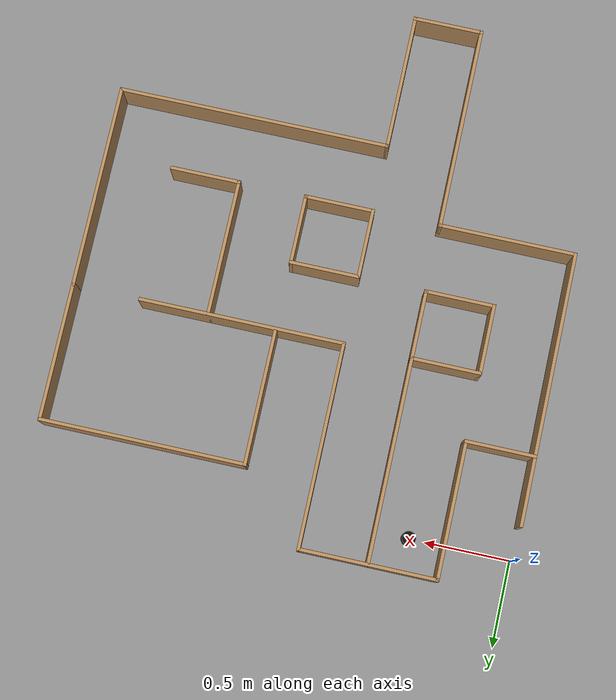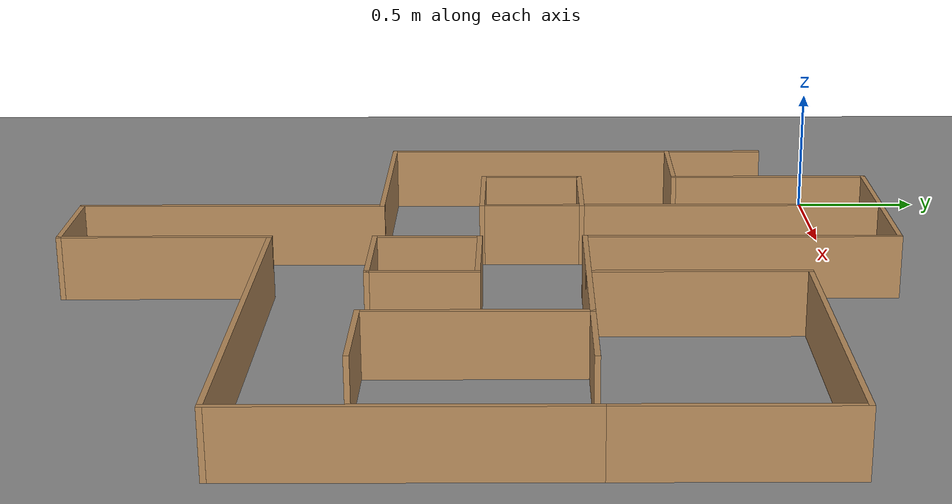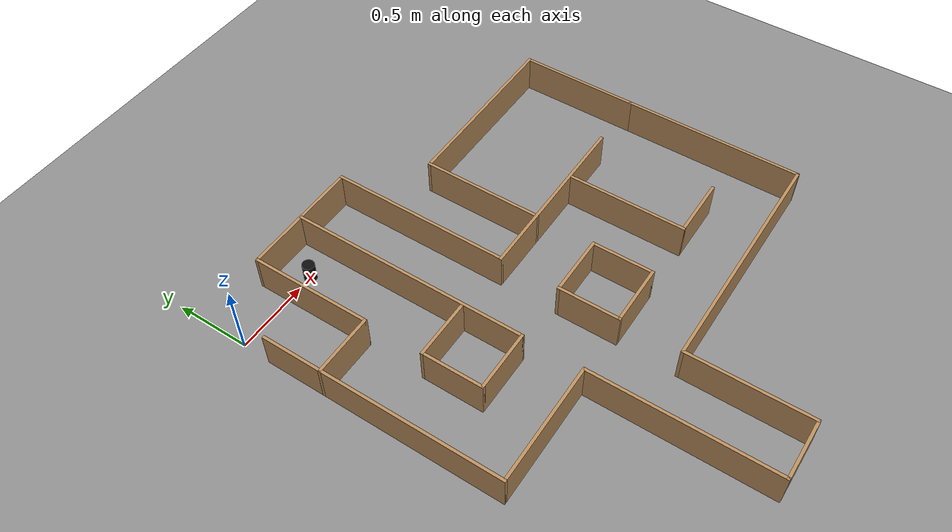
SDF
<sdf version="1.9">
 <world name="ros2_world">
  <model name="ground_plane">
   <static>true</static>
   <link name="link">
    <collision name="collision">
     <geometry><plane><normal>0 0 1</normal><size>10 10</size></plane></geometry>
    </collision>
    <visual name="visual">
     <geometry><plane><normal>0 0 1</normal><size>10 10</size></plane></geometry>
     <material><ambient>0.55 0.55 0.55 1</ambient><diffuse>0.55 0.55 0.55 1</diffuse></material>
    </visual>
   </link>
  </model>
  <model name="paredes">
   <static>true</static>
   <link name="link">
    <collision name="c1">
     <pose>0.8 0.2 0.125 0 0 0</pose>
     <geometry><box><size>0.82 0.02 0.25</size></box></geometry>
    </collision>
    <visual name="v1">
     <pose>0.8 0.2 0.125 0 0 0</pose>
     <geometry><box><size>0.82 0.02 0.25</size></box></geometry>
     <material><ambient>0.72 0.55 0.36 1</ambient><diffuse>0.72 0.55 0.36 1</diffuse></material>
    </visual>
    <collision name="c2">
     <pose>0.4 -0.2 0.125 0 0 -1.5708</pose>
     <geometry><box><size>0.82 0.02 0.25</size></box></geometry>
    </collision>
    <visual name="v2">
     <pose>0.4 -0.2 0.125 0 0 -1.5708</pose>
     <geometry><box><size>0.82 0.02 0.25</size></box></geometry>
     <material><ambient>0.72 0.55 0.36 1</ambient><diffuse>0.72 0.55 0.36 1</diffuse></material>
    </visual>
    <collision name="c3">
     <pose>0.2 -0.6 0.125 0 0 0</pose>
     <geometry><box><size>0.42 0.02 0.25</size></box></geometry>
    </collision>
    <visual name="v3">
     <pose>0.2 -0.6 0.125 0 0 0</pose>
     <geometry><box><size>0.42 0.02 0.25</size></box></geometry>
     <material><ambient>0.72 0.55 0.36 1</ambient><diffuse>0.72 0.55 0.36 1</diffuse></material>
    </visual>
    <collision name="c4">
     <pose>0 -1 0.125 0 0 -1.5708</pose>
     <geometry><box><size>1.62 0.02 0.25</size></box></geometry>
    </collision>
    <visual name="v4">
     <pose>0 -1 0.125 0 0 -1.5708</pose>
     <geometry><box><size>1.62 0.02 0.25</size></box></geometry>
     <material><ambient>0.72 0.55 0.36 1</ambient><diffuse>0.72 0.55 0.36 1</diffuse></material>
    </visual>
    <collision name="c5">
     <pose>0.8 -0.6 0.125 0 0 -1.5708</pose>
     <geometry><box><size>1.62 0.02 0.25</size></box></geometry>
    </collision>
    <visual name="v5">
     <pose>0.8 -0.6 0.125 0 0 -1.5708</pose>
     <geometry><box><size>1.62 0.02 0.25</size></box></geometry>
     <material><ambient>0.72 0.55 0.36 1</ambient><diffuse>0.72 0.55 0.36 1</diffuse></material>
    </visual>
    <collision name="c6">
     <pose>0.6 -1 0.125 0 0 0</pose>
     <geometry><box><size>0.42 0.02 0.25</size></box></geometry>
    </collision>
    <visual name="v6">
     <pose>0.6 -1 0.125 0 0 0</pose>
     <geometry><box><size>0.42 0.02 0.25</size></box></geometry>
     <material><ambient>0.72 0.55 0.36 1</ambient><diffuse>0.72 0.55 0.36 1</diffuse></material>
    </visual>
    <collision name="c7">
     <pose>0.4 -1.2 0.125 0 0 -1.5708</pose>
     <geometry><box><size>0.42 0.02 0.25</size></box></geometry>
    </collision>
    <visual name="v7">
     <pose>0.4 -1.2 0.125 0 0 -1.5708</pose>
     <geometry><box><size>0.42 0.02 0.25</size></box></geometry>
     <material><ambient>0.72 0.55 0.36 1</ambient><diffuse>0.72 0.55 0.36 1</diffuse></material>
    </visual>
    <collision name="c8">
     <pose>0.6 -1.4 0.125 0 0 0</pose>
     <geometry><box><size>0.42 0.02 0.25</size></box></geometry>
    </collision>
    <visual name="v8">
     <pose>0.6 -1.4 0.125 0 0 0</pose>
     <geometry><box><size>0.42 0.02 0.25</size></box></geometry>
     <material><ambient>0.72 0.55 0.36 1</ambient><diffuse>0.72 0.55 0.36 1</diffuse></material>
    </visual>
    <collision name="c9">
     <pose>1.2 -0.4 0.125 0 0 -1.5708</pose>
     <geometry><box><size>1.22 0.02 0.25</size></box></geometry>
    </collision>
    <visual name="v9">
     <pose>1.2 -0.4 0.125 0 0 -1.5708</pose>
     <geometry><box><size>1.22 0.02 0.25</size></box></geometry>
     <material><ambient>0.72 0.55 0.36 1</ambient><diffuse>0.72 0.55 0.36 1</diffuse></material>
    </visual>
    <collision name="c10">
     <pose>1.8 -1 0.125 0 0 0</pose>
     <geometry><box><size>1.22 0.02 0.25</size></box></geometry>
    </collision>
    <visual name="v10">
     <pose>1.8 -1 0.125 0 0 0</pose>
     <geometry><box><size>1.22 0.02 0.25</size></box></geometry>
     <material><ambient>0.72 0.55 0.36 1</ambient><diffuse>0.72 0.55 0.36 1</diffuse></material>
    </visual>
    <collision name="c11">
     <pose>2 -1.4 0.125 0 0 -1.5708</pose>
     <geometry><box><size>0.82 0.02 0.25</size></box></geometry>
    </collision>
    <visual name="v11">
     <pose>2 -1.4 0.125 0 0 -1.5708</pose>
     <geometry><box><size>0.82 0.02 0.25</size></box></geometry>
     <material><ambient>0.72 0.55 0.36 1</ambient><diffuse>0.72 0.55 0.36 1</diffuse></material>
    </visual>
    <collision name="c12">
     <pose>2.2 -1.8 0.125 0 0 0</pose>
     <geometry><box><size>0.42 0.02 0.25</size></box></geometry>
    </collision>
    <visual name="v12">
     <pose>2.2 -1.8 0.125 0 0 0</pose>
     <geometry><box><size>0.42 0.02 0.25</size></box></geometry>
     <material><ambient>0.72 0.55 0.36 1</ambient><diffuse>0.72 0.55 0.36 1</diffuse></material>
    </visual>
    <collision name="c13">
     <pose>2.8 -1.6 0.125 0 0 -1.5708</pose>
     <geometry><box><size>1.22 0.02 0.25</size></box></geometry>
    </collision>
    <visual name="v13">
     <pose>2.8 -1.6 0.125 0 0 -1.5708</pose>
     <geometry><box><size>1.22 0.02 0.25</size></box></geometry>
     <material><ambient>0.72 0.55 0.36 1</ambient><diffuse>0.72 0.55 0.36 1</diffuse></material>
    </visual>
    <collision name="c14">
     <pose>1.4 -1.4 0.125 0 0 0</pose>
     <geometry><box><size>0.42 0.02 0.25</size></box></geometry>
    </collision>
    <visual name="v14">
     <pose>1.4 -1.4 0.125 0 0 0</pose>
     <geometry><box><size>0.42 0.02 0.25</size></box></geometry>
     <material><ambient>0.72 0.55 0.36 1</ambient><diffuse>0.72 0.55 0.36 1</diffuse></material>
    </visual>
    <collision name="c15">
     <pose>1.6 -1.6 0.125 0 0 -1.5708</pose>
     <geometry><box><size>0.42 0.02 0.25</size></box></geometry>
    </collision>
    <visual name="v15">
     <pose>1.6 -1.6 0.125 0 0 -1.5708</pose>
     <geometry><box><size>0.42 0.02 0.25</size></box></geometry>
     <material><ambient>0.72 0.55 0.36 1</ambient><diffuse>0.72 0.55 0.36 1</diffuse></material>
    </visual>
    <collision name="c16">
     <pose>1.4 -1.8 0.125 0 0 0</pose>
     <geometry><box><size>0.42 0.02 0.25</size></box></geometry>
    </collision>
    <visual name="v16">
     <pose>1.4 -1.8 0.125 0 0 0</pose>
     <geometry><box><size>0.42 0.02 0.25</size></box></geometry>
     <material><ambient>0.72 0.55 0.36 1</ambient><diffuse>0.72 0.55 0.36 1</diffuse></material>
    </visual>
    <collision name="c17">
     <pose>1.2 -1.6 0.125 0 0 -1.5708</pose>
     <geometry><box><size>0.42 0.02 0.25</size></box></geometry>
    </collision>
    <visual name="v17">
     <pose>1.2 -1.6 0.125 0 0 -1.5708</pose>
     <geometry><box><size>0.42 0.02 0.25</size></box></geometry>
     <material><ambient>0.72 0.55 0.36 1</ambient><diffuse>0.72 0.55 0.36 1</diffuse></material>
    </visual>
    <collision name="c18">
     <pose>0.4 -1.8 0.125 0 0 0</pose>
     <geometry><box><size>0.82 0.02 0.25</size></box></geometry>
    </collision>
    <visual name="v18">
     <pose>0.4 -1.8 0.125 0 0 0</pose>
     <geometry><box><size>0.82 0.02 0.25</size></box></geometry>
     <material><ambient>0.72 0.55 0.36 1</ambient><diffuse>0.72 0.55 0.36 1</diffuse></material>
    </visual>
    <collision name="c19">
     <pose>0.8 -2.4 0.125 0 0 -1.5708</pose>
     <geometry><box><size>1.22 0.02 0.25</size></box></geometry>
    </collision>
    <visual name="v19">
     <pose>0.8 -2.4 0.125 0 0 -1.5708</pose>
     <geometry><box><size>1.22 0.02 0.25</size></box></geometry>
     <material><ambient>0.72 0.55 0.36 1</ambient><diffuse>0.72 0.55 0.36 1</diffuse></material>
    </visual>
    <collision name="c20">
     <pose>1 -3 0.125 0 0 0</pose>
     <geometry><box><size>0.42 0.02 0.25</size></box></geometry>
    </collision>
    <visual name="v20">
     <pose>1 -3 0.125 0 0 0</pose>
     <geometry><box><size>0.42 0.02 0.25</size></box></geometry>
     <material><ambient>0.72 0.55 0.36 1</ambient><diffuse>0.72 0.55 0.36 1</diffuse></material>
    </visual>
    <collision name="c21">
     <pose>1.2 -2.6 0.125 0 0 -1.5708</pose>
     <geometry><box><size>0.82 0.02 0.25</size></box></geometry>
    </collision>
    <visual name="v21">
     <pose>1.2 -2.6 0.125 0 0 -1.5708</pose>
     <geometry><box><size>0.82 0.02 0.25</size></box></geometry>
     <material><ambient>0.72 0.55 0.36 1</ambient><diffuse>0.72 0.55 0.36 1</diffuse></material>
    </visual>
    <collision name="c22">
     <pose>2 -2.2 0.125 0 0 0</pose>
     <geometry><box><size>1.62 0.02 0.25</size></box></geometry>
    </collision>
    <visual name="v22">
     <pose>2 -2.2 0.125 0 0 0</pose>
     <geometry><box><size>1.62 0.02 0.25</size></box></geometry>
     <material><ambient>0.72 0.55 0.36 1</ambient><diffuse>0.72 0.55 0.36 1</diffuse></material>
    </visual>
    <collision name="c23">
     <pose>2.2 -0.2 0.125 0 0 0</pose>
     <geometry><box><size>1.22 0.02 0.25</size></box></geometry>
    </collision>
    <visual name="v23">
     <pose>2.2 -0.2 0.125 0 0 0</pose>
     <geometry><box><size>1.22 0.02 0.25</size></box></geometry>
     <material><ambient>0.72 0.55 0.36 1</ambient><diffuse>0.72 0.55 0.36 1</diffuse></material>
    </visual>
    <collision name="c24">
     <pose>1.6 -0.6 0.125 0 0 -1.5708</pose>
     <geometry><box><size>0.82 0.02 0.25</size></box></geometry>
    </collision>
    <visual name="v24">
     <pose>1.6 -0.6 0.125 0 0 -1.5708</pose>
     <geometry><box><size>0.82 0.02 0.25</size></box></geometry>
     <material><ambient>0.72 0.55 0.36 1</ambient><diffuse>0.72 0.55 0.36 1</diffuse></material>
    </visual>
    <collision name="c25">
     <pose>2.8 -0.6 0.125 0 0 -1.5708</pose>
     <geometry><box><size>0.82 0.02 0.25</size></box></geometry>
    </collision>
    <visual name="v25">
     <pose>2.8 -0.6 0.125 0 0 -1.5708</pose>
     <geometry><box><size>0.82 0.02 0.25</size></box></geometry>
     <material><ambient>0.72 0.55 0.36 1</ambient><diffuse>0.72 0.55 0.36 1</diffuse></material>
    </visual>
   </link>
  </model>
  <model name="soporte_cubo_azul">
   <static>true</static>
   <pose>0.6 0 0.06425 0 0 0</pose>
   <link name="link">
    <collision name="colision">
     <geometry><cylinder><radius>0.04</radius><length>0.1285</length></cylinder></geometry>
    </collision>
    <visual name="visual">
     <geometry><cylinder><radius>0.04</radius><length>0.1285</length></cylinder></geometry>
     <material><ambient>0.05 0.05 0.05 1</ambient><diffuse>0.05 0.05 0.05 1</diffuse></material>
    </visual>
   </link>
  </model>
 </world>
</sdf>
